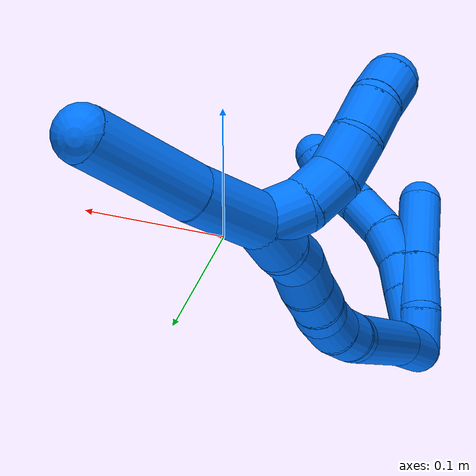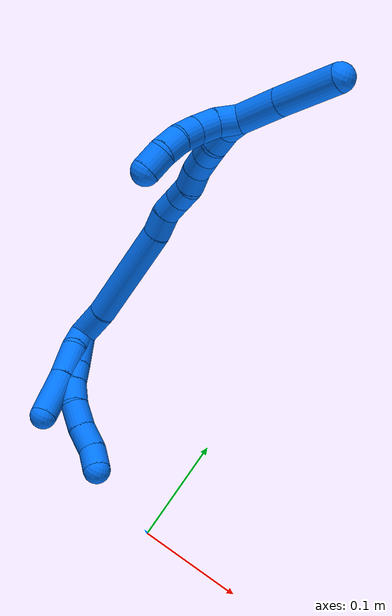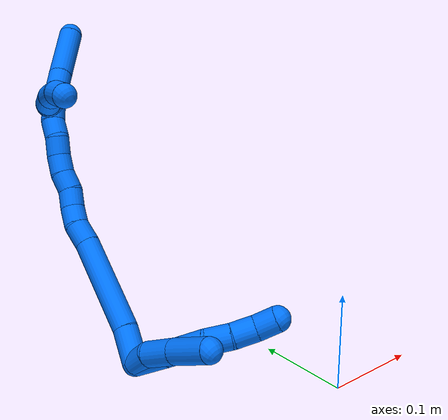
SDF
<sdf version="1.7">
 <world name="default">
  <model name="14">
   <static>0</static>
   <link name="14">
    <collision name="collision-cylinder-e_1_2_8">
     <pose>0.011186 -0.011287 -0.010384 2.31451 0.63016 1.27764</pose>
     <geometry><cylinder><radius>0.0125</radius><length>0.037966</length></cylinder></geometry>
     <surface>
      <friction><ode><mu>1.16</mu><mu2>1.16</mu2><slip1>0</slip1><slip2>0</slip2></ode></friction>
      <contact><ode><kp>1e+06</kp><kd>1</kd><max_vel>0</max_vel><min_depth>0.001</min_depth></ode></contact>
     </surface>
    </collision>
    <visual name="visual-cylinder-e_1_2_8">
     <pose>0.011186 -0.011287 -0.010384 2.31451 0.63016 1.27764</pose>
     <geometry><cylinder><radius>0.0125</radius><length>0.037966</length></cylinder></geometry>
     <material><ambient>0 0.462745 1 1</ambient></material>
    </visual>
    <collision name="collision-cylinder-e_2_8_9">
     <pose>0.028142 -0.028776 -0.026102 2.28126 0.614242 1.20964</pose>
     <geometry><cylinder><radius>0.0125</radius><length>0.02002</length></cylinder></geometry>
     <surface>
      <friction><ode><mu>1.16</mu><mu2>1.16</mu2><slip1>0</slip1><slip2>0</slip2></ode></friction>
      <contact><ode><kp>1e+06</kp><kd>1</kd><max_vel>0</max_vel><min_depth>0.001</min_depth></ode></contact>
     </surface>
    </collision>
    <visual name="visual-cylinder-e_2_8_9">
     <pose>0.028142 -0.028776 -0.026102 2.28126 0.614242 1.20964</pose>
     <geometry><cylinder><radius>0.0125</radius><length>0.02002</length></cylinder></geometry>
     <material><ambient>0 0.462745 1 1</ambient></material>
    </visual>
    <collision name="collision-cylinder-e_3_9_10">
     <pose>0.042318 -0.039885 -0.037194 2.43566 0.838137 1.75961</pose>
     <geometry><cylinder><radius>0.0125</radius><length>0.022619</length></cylinder></geometry>
     <surface>
      <friction><ode><mu>1.16</mu><mu2>1.16</mu2><slip1>0</slip1><slip2>0</slip2></ode></friction>
      <contact><ode><kp>1e+06</kp><kd>1</kd><max_vel>0</max_vel><min_depth>0.001</min_depth></ode></contact>
     </surface>
    </collision>
    <visual name="visual-cylinder-e_3_9_10">
     <pose>0.042318 -0.039885 -0.037194 2.43566 0.838137 1.75961</pose>
     <geometry><cylinder><radius>0.0125</radius><length>0.022619</length></cylinder></geometry>
     <material><ambient>0 0.462745 1 1</ambient></material>
    </visual>
    <collision name="collision-cylinder-e_4_10_11">
     <pose>0.06079 -0.047132 -0.049366 2.79191 0.974617 2.49809</pose>
     <geometry><cylinder><radius>0.0125</radius><length>0.024323</length></cylinder></geometry>
     <surface>
      <friction><ode><mu>1.16</mu><mu2>1.16</mu2><slip1>0</slip1><slip2>0</slip2></ode></friction>
      <contact><ode><kp>1e+06</kp><kd>1</kd><max_vel>0</max_vel><min_depth>0.001</min_depth></ode></contact>
     </surface>
    </collision>
    <visual name="visual-cylinder-e_4_10_11">
     <pose>0.06079 -0.047132 -0.049366 2.79191 0.974617 2.49809</pose>
     <geometry><cylinder><radius>0.0125</radius><length>0.024323</length></cylinder></geometry>
     <material><ambient>0 0.462745 1 1</ambient></material>
    </visual>
    <collision name="collision-cylinder-e_5_11_12">
     <pose>0.0815 -0.051052 -0.060444 2.81461 1.13765 2.63654</pose>
     <geometry><cylinder><radius>0.0125</radius><length>0.02346</length></cylinder></geometry>
     <surface>
      <friction><ode><mu>1.16</mu><mu2>1.16</mu2><slip1>0</slip1><slip2>0</slip2></ode></friction>
      <contact><ode><kp>1e+06</kp><kd>1</kd><max_vel>0</max_vel><min_depth>0.001</min_depth></ode></contact>
     </surface>
    </collision>
    <visual name="visual-cylinder-e_5_11_12">
     <pose>0.0815 -0.051052 -0.060444 2.81461 1.13765 2.63654</pose>
     <geometry><cylinder><radius>0.0125</radius><length>0.02346</length></cylinder></geometry>
     <material><ambient>0 0.462745 1 1</ambient></material>
    </visual>
    <collision name="collision-cylinder-e_6_12_6">
     <pose>0.100954 -0.057113 -0.069481 2.34441 0.952796 1.77265</pose>
     <geometry><cylinder><radius>0.0125</radius><length>0.021611</length></cylinder></geometry>
     <surface>
      <friction><ode><mu>1.16</mu><mu2>1.16</mu2><slip1>0</slip1><slip2>0</slip2></ode></friction>
      <contact><ode><kp>1e+06</kp><kd>1</kd><max_vel>0</max_vel><min_depth>0.001</min_depth></ode></contact>
     </surface>
    </collision>
    <visual name="visual-cylinder-e_6_12_6">
     <pose>0.100954 -0.057113 -0.069481 2.34441 0.952796 1.77265</pose>
     <geometry><cylinder><radius>0.0125</radius><length>0.021611</length></cylinder></geometry>
     <material><ambient>0 0.462745 1 1</ambient></material>
    </visual>
    <collision name="collision-cylinder-e_1_2_13">
     <pose>0.00502 -0.009686 -0.004267 1.98574 0.442864 0.664733</pose>
     <geometry><cylinder><radius>0.0125</radius><length>0.023428</length></cylinder></geometry>
     <surface>
      <friction><ode><mu>1.16</mu><mu2>1.16</mu2><slip1>0</slip1><slip2>0</slip2></ode></friction>
      <contact><ode><kp>1e+06</kp><kd>1</kd><max_vel>0</max_vel><min_depth>0.001</min_depth></ode></contact>
     </surface>
    </collision>
    <visual name="visual-cylinder-e_1_2_13">
     <pose>0.00502 -0.009686 -0.004267 1.98574 0.442864 0.664733</pose>
     <geometry><cylinder><radius>0.0125</radius><length>0.023428</length></cylinder></geometry>
     <material><ambient>0 0.462745 1 1</ambient></material>
    </visual>
    <collision name="collision-cylinder-e_2_13_14">
     <pose>0.017079 -0.02975 -0.019144 2.36728 0.442842 1.00891</pose>
     <geometry><cylinder><radius>0.0125</radius><length>0.032854</length></cylinder></geometry>
     <surface>
      <friction><ode><mu>1.16</mu><mu2>1.16</mu2><slip1>0</slip1><slip2>0</slip2></ode></friction>
      <contact><ode><kp>1e+06</kp><kd>1</kd><max_vel>0</max_vel><min_depth>0.001</min_depth></ode></contact>
     </surface>
    </collision>
    <visual name="visual-cylinder-e_2_13_14">
     <pose>0.017079 -0.02975 -0.019144 2.36728 0.442842 1.00891</pose>
     <geometry><cylinder><radius>0.0125</radius><length>0.032854</length></cylinder></geometry>
     <material><ambient>0 0.462745 1 1</ambient></material>
    </visual>
    <collision name="collision-cylinder-e_3_14_5">
     <pose>0.031747 -0.054336 -0.044511 2.37512 0.356509 0.840507</pose>
     <geometry><cylinder><radius>0.0125</radius><length>0.043718</length></cylinder></geometry>
     <surface>
      <friction><ode><mu>1.16</mu><mu2>1.16</mu2><slip1>0</slip1><slip2>0</slip2></ode></friction>
      <contact><ode><kp>1e+06</kp><kd>1</kd><max_vel>0</max_vel><min_depth>0.001</min_depth></ode></contact>
     </surface>
    </collision>
    <visual name="visual-cylinder-e_3_14_5">
     <pose>0.031747 -0.054336 -0.044511 2.37512 0.356509 0.840507</pose>
     <geometry><cylinder><radius>0.0125</radius><length>0.043718</length></cylinder></geometry>
     <material><ambient>0 0.462745 1 1</ambient></material>
    </visual>
    <collision name="collision-cylinder-e_1_2_15">
     <pose>0.006734 -0.002694 0.016218 0.164606 0.388776 0.032477</pose>
     <geometry><cylinder><radius>0.0125</radius><length>0.035531</length></cylinder></geometry>
     <surface>
      <friction><ode><mu>1.16</mu><mu2>1.16</mu2><slip1>0</slip1><slip2>0</slip2></ode></friction>
      <contact><ode><kp>1e+06</kp><kd>1</kd><max_vel>0</max_vel><min_depth>0.001</min_depth></ode></contact>
     </surface>
    </collision>
    <visual name="visual-cylinder-e_1_2_15">
     <pose>0.006734 -0.002694 0.016218 0.164606 0.388776 0.032477</pose>
     <geometry><cylinder><radius>0.0125</radius><length>0.035531</length></cylinder></geometry>
     <material><ambient>0 0.462745 1 1</ambient></material>
    </visual>
    <collision name="collision-cylinder-e_2_15_16">
     <pose>0.026394 -0.011754 0.080937 0.130517 0.258336 0.016977</pose>
     <geometry><cylinder><radius>0.0125</radius><length>0.101193</length></cylinder></geometry>
     <surface>
      <friction><ode><mu>1.16</mu><mu2>1.16</mu2><slip1>0</slip1><slip2>0</slip2></ode></friction>
      <contact><ode><kp>1e+06</kp><kd>1</kd><max_vel>0</max_vel><min_depth>0.001</min_depth></ode></contact>
     </surface>
    </collision>
    <visual name="visual-cylinder-e_2_15_16">
     <pose>0.026394 -0.011754 0.080937 0.130517 0.258336 0.016977</pose>
     <geometry><cylinder><radius>0.0125</radius><length>0.101193</length></cylinder></geometry>
     <material><ambient>0 0.462745 1 1</ambient></material>
    </visual>
    <collision name="collision-cylinder-e_3_16_17">
     <pose>0.040812 -0.020631 0.14069 0.219505 0.12868 0.014199</pose>
     <geometry><cylinder><radius>0.0125</radius><length>0.02325</length></cylinder></geometry>
     <surface>
      <friction><ode><mu>1.16</mu><mu2>1.16</mu2><slip1>0</slip1><slip2>0</slip2></ode></friction>
      <contact><ode><kp>1e+06</kp><kd>1</kd><max_vel>0</max_vel><min_depth>0.001</min_depth></ode></contact>
     </surface>
    </collision>
    <visual name="visual-cylinder-e_3_16_17">
     <pose>0.040812 -0.020631 0.14069 0.219505 0.12868 0.014199</pose>
     <geometry><cylinder><radius>0.0125</radius><length>0.02325</length></cylinder></geometry>
     <material><ambient>0 0.462745 1 1</ambient></material>
    </visual>
    <collision name="collision-cylinder-e_4_17_18">
     <pose>0.046384 -0.025025 0.160878 0.207721 0.420177 0.044446</pose>
     <geometry><cylinder><radius>0.0125</radius><length>0.020002</length></cylinder></geometry>
     <surface>
      <friction><ode><mu>1.16</mu><mu2>1.16</mu2><slip1>0</slip1><slip2>0</slip2></ode></friction>
      <contact><ode><kp>1e+06</kp><kd>1</kd><max_vel>0</max_vel><min_depth>0.001</min_depth></ode></contact>
     </surface>
    </collision>
    <visual name="visual-cylinder-e_4_17_18">
     <pose>0.046384 -0.025025 0.160878 0.207721 0.420177 0.044446</pose>
     <geometry><cylinder><radius>0.0125</radius><length>0.020002</length></cylinder></geometry>
     <material><ambient>0 0.462745 1 1</ambient></material>
    </visual>
    <collision name="collision-cylinder-e_5_18_19">
     <pose>0.055143 -0.030598 0.177856 0.430098 0.48646 0.108296</pose>
     <geometry><cylinder><radius>0.0125</radius><length>0.020022</length></cylinder></geometry>
     <surface>
      <friction><ode><mu>1.16</mu><mu2>1.16</mu2><slip1>0</slip1><slip2>0</slip2></ode></friction>
      <contact><ode><kp>1e+06</kp><kd>1</kd><max_vel>0</max_vel><min_depth>0.001</min_depth></ode></contact>
     </surface>
    </collision>
    <visual name="visual-cylinder-e_5_18_19">
     <pose>0.055143 -0.030598 0.177856 0.430098 0.48646 0.108296</pose>
     <geometry><cylinder><radius>0.0125</radius><length>0.020022</length></cylinder></geometry>
     <material><ambient>0 0.462745 1 1</ambient></material>
    </visual>
    <collision name="collision-cylinder-e_6_19_20">
     <pose>0.061714 -0.038054 0.194969 0.393621 0.190181 0.038031</pose>
     <geometry><cylinder><radius>0.0125</radius><length>0.020001</length></cylinder></geometry>
     <surface>
      <friction><ode><mu>1.16</mu><mu2>1.16</mu2><slip1>0</slip1><slip2>0</slip2></ode></friction>
      <contact><ode><kp>1e+06</kp><kd>1</kd><max_vel>0</max_vel><min_depth>0.001</min_depth></ode></contact>
     </surface>
    </collision>
    <visual name="visual-cylinder-e_6_19_20">
     <pose>0.061714 -0.038054 0.194969 0.393621 0.190181 0.038031</pose>
     <geometry><cylinder><radius>0.0125</radius><length>0.020001</length></cylinder></geometry>
     <material><ambient>0 0.462745 1 1</ambient></material>
    </visual>
    <collision name="collision-cylinder-e_7_20_21">
     <pose>0.067486 -0.045964 0.21227 0.466349 0.398587 0.095862</pose>
     <geometry><cylinder><radius>0.0125</radius><length>0.02</length></cylinder></geometry>
     <surface>
      <friction><ode><mu>1.16</mu><mu2>1.16</mu2><slip1>0</slip1><slip2>0</slip2></ode></friction>
      <contact><ode><kp>1e+06</kp><kd>1</kd><max_vel>0</max_vel><min_depth>0.001</min_depth></ode></contact>
     </surface>
    </collision>
    <visual name="visual-cylinder-e_7_20_21">
     <pose>0.067486 -0.045964 0.21227 0.466349 0.398587 0.095862</pose>
     <geometry><cylinder><radius>0.0125</radius><length>0.02</length></cylinder></geometry>
     <material><ambient>0 0.462745 1 1</ambient></material>
    </visual>
    <collision name="collision-cylinder-e_8_21_22">
     <pose>0.075852 -0.055549 0.227594 0.654427 0.465053 0.160409</pose>
     <geometry><cylinder><radius>0.0125</radius><length>0.02</length></cylinder></geometry>
     <surface>
      <friction><ode><mu>1.16</mu><mu2>1.16</mu2><slip1>0</slip1><slip2>0</slip2></ode></friction>
      <contact><ode><kp>1e+06</kp><kd>1</kd><max_vel>0</max_vel><min_depth>0.001</min_depth></ode></contact>
     </surface>
    </collision>
    <visual name="visual-cylinder-e_8_21_22">
     <pose>0.075852 -0.055549 0.227594 0.654427 0.465053 0.160409</pose>
     <geometry><cylinder><radius>0.0125</radius><length>0.02</length></cylinder></geometry>
     <material><ambient>0 0.462745 1 1</ambient></material>
    </visual>
    <collision name="collision-cylinder-e_9_22_23">
     <pose>0.084163 -0.063792 0.243489 0.308154 0.39266 0.06176</pose>
     <geometry><cylinder><radius>0.0125</radius><length>0.02</length></cylinder></geometry>
     <surface>
      <friction><ode><mu>1.16</mu><mu2>1.16</mu2><slip1>0</slip1><slip2>0</slip2></ode></friction>
      <contact><ode><kp>1e+06</kp><kd>1</kd><max_vel>0</max_vel><min_depth>0.001</min_depth></ode></contact>
     </surface>
    </collision>
    <visual name="visual-cylinder-e_9_22_23">
     <pose>0.084163 -0.063792 0.243489 0.308154 0.39266 0.06176</pose>
     <geometry><cylinder><radius>0.0125</radius><length>0.02</length></cylinder></geometry>
     <material><ambient>0 0.462745 1 1</ambient></material>
    </visual>
    <collision name="collision-cylinder-e_10_23_1">
     <pose>0.09392 -0.070692 0.259223 0.534033 0.634868 0.179264</pose>
     <geometry><cylinder><radius>0.0125</radius><length>0.02</length></cylinder></geometry>
     <surface>
      <friction><ode><mu>1.16</mu><mu2>1.16</mu2><slip1>0</slip1><slip2>0</slip2></ode></friction>
      <contact><ode><kp>1e+06</kp><kd>1</kd><max_vel>0</max_vel><min_depth>0.001</min_depth></ode></contact>
     </surface>
    </collision>
    <visual name="visual-cylinder-e_10_23_1">
     <pose>0.09392 -0.070692 0.259223 0.534033 0.634868 0.179264</pose>
     <geometry><cylinder><radius>0.0125</radius><length>0.02</length></cylinder></geometry>
     <material><ambient>0 0.462745 1 1</ambient></material>
    </visual>
    <collision name="collision-cylinder-e_1_1_24">
     <pose>0.094033 -0.081314 0.261297 2.21072 -0.620943 -1.13697</pose>
     <geometry><cylinder><radius>0.0125</radius><length>0.02</length></cylinder></geometry>
     <surface>
      <friction><ode><mu>1.16</mu><mu2>1.16</mu2><slip1>0</slip1><slip2>0</slip2></ode></friction>
      <contact><ode><kp>1e+06</kp><kd>1</kd><max_vel>0</max_vel><min_depth>0.001</min_depth></ode></contact>
     </surface>
    </collision>
    <visual name="visual-cylinder-e_1_1_24">
     <pose>0.094033 -0.081314 0.261297 2.21072 -0.620943 -1.13697</pose>
     <geometry><cylinder><radius>0.0125</radius><length>0.02</length></cylinder></geometry>
     <material><ambient>0 0.462745 1 1</ambient></material>
    </visual>
    <collision name="collision-cylinder-e_2_24_25">
     <pose>0.085349 -0.095516 0.250709 2.21208 -0.290682 -0.568084</pose>
     <geometry><cylinder><radius>0.0125</radius><length>0.02</length></cylinder></geometry>
     <surface>
      <friction><ode><mu>1.16</mu><mu2>1.16</mu2><slip1>0</slip1><slip2>0</slip2></ode></friction>
      <contact><ode><kp>1e+06</kp><kd>1</kd><max_vel>0</max_vel><min_depth>0.001</min_depth></ode></contact>
     </surface>
    </collision>
    <visual name="visual-cylinder-e_2_24_25">
     <pose>0.085349 -0.095516 0.250709 2.21208 -0.290682 -0.568084</pose>
     <geometry><cylinder><radius>0.0125</radius><length>0.02</length></cylinder></geometry>
     <material><ambient>0 0.462745 1 1</ambient></material>
    </visual>
    <collision name="collision-cylinder-e_3_25_26">
     <pose>0.082356 -0.112107 0.240448 2.04096 -0.012676 -0.02066</pose>
     <geometry><cylinder><radius>0.0125</radius><length>0.02</length></cylinder></geometry>
     <surface>
      <friction><ode><mu>1.16</mu><mu2>1.16</mu2><slip1>0</slip1><slip2>0</slip2></ode></friction>
      <contact><ode><kp>1e+06</kp><kd>1</kd><max_vel>0</max_vel><min_depth>0.001</min_depth></ode></contact>
     </surface>
    </collision>
    <visual name="visual-cylinder-e_3_25_26">
     <pose>0.082356 -0.112107 0.240448 2.04096 -0.012676 -0.02066</pose>
     <geometry><cylinder><radius>0.0125</radius><length>0.02</length></cylinder></geometry>
     <material><ambient>0 0.462745 1 1</ambient></material>
    </visual>
    <collision name="collision-cylinder-e_4_26_27">
     <pose>0.082543 -0.128717 0.22954 2.26282 0.031354 0.066686</pose>
     <geometry><cylinder><radius>0.0125</radius><length>0.02</length></cylinder></geometry>
     <surface>
      <friction><ode><mu>1.16</mu><mu2>1.16</mu2><slip1>0</slip1><slip2>0</slip2></ode></friction>
      <contact><ode><kp>1e+06</kp><kd>1</kd><max_vel>0</max_vel><min_depth>0.001</min_depth></ode></contact>
     </surface>
    </collision>
    <visual name="visual-cylinder-e_4_26_27">
     <pose>0.082543 -0.128717 0.22954 2.26282 0.031354 0.066686</pose>
     <geometry><cylinder><radius>0.0125</radius><length>0.02</length></cylinder></geometry>
     <material><ambient>0 0.462745 1 1</ambient></material>
    </visual>
    <collision name="collision-cylinder-e_5_27_4">
     <pose>0.082452 -0.141547 0.21459 2.60199 -0.040403 -0.14586</pose>
     <geometry><cylinder><radius>0.0125</radius><length>0.02</length></cylinder></geometry>
     <surface>
      <friction><ode><mu>1.16</mu><mu2>1.16</mu2><slip1>0</slip1><slip2>0</slip2></ode></friction>
      <contact><ode><kp>1e+06</kp><kd>1</kd><max_vel>0</max_vel><min_depth>0.001</min_depth></ode></contact>
     </surface>
    </collision>
    <visual name="visual-cylinder-e_5_27_4">
     <pose>0.082452 -0.141547 0.21459 2.60199 -0.040403 -0.14586</pose>
     <geometry><cylinder><radius>0.0125</radius><length>0.02</length></cylinder></geometry>
     <material><ambient>0 0.462745 1 1</ambient></material>
    </visual>
    <collision name="collision-cylinder-e_1_1_28">
     <pose>0.114237 -0.076153 0.280787 0.092858 0.774727 0.037907</pose>
     <geometry><cylinder><radius>0.0125</radius><length>0.041133</length></cylinder></geometry>
     <surface>
      <friction><ode><mu>1.16</mu><mu2>1.16</mu2><slip1>0</slip1><slip2>0</slip2></ode></friction>
      <contact><ode><kp>1e+06</kp><kd>1</kd><max_vel>0</max_vel><min_depth>0.001</min_depth></ode></contact>
     </surface>
    </collision>
    <visual name="visual-cylinder-e_1_1_28">
     <pose>0.114237 -0.076153 0.280787 0.092858 0.774727 0.037907</pose>
     <geometry><cylinder><radius>0.0125</radius><length>0.041133</length></cylinder></geometry>
     <material><ambient>0 0.462745 1 1</ambient></material>
    </visual>
    <collision name="collision-cylinder-e_2_28_3">
     <pose>0.149974 -0.081284 0.315329 0.18704 0.811543 0.080546</pose>
     <geometry><cylinder><radius>0.0125</radius><length>0.058867</length></cylinder></geometry>
     <surface>
      <friction><ode><mu>1.16</mu><mu2>1.16</mu2><slip1>0</slip1><slip2>0</slip2></ode></friction>
      <contact><ode><kp>1e+06</kp><kd>1</kd><max_vel>0</max_vel><min_depth>0.001</min_depth></ode></contact>
     </surface>
    </collision>
    <visual name="visual-cylinder-e_2_28_3">
     <pose>0.149974 -0.081284 0.315329 0.18704 0.811543 0.080546</pose>
     <geometry><cylinder><radius>0.0125</radius><length>0.058867</length></cylinder></geometry>
     <material><ambient>0 0.462745 1 1</ambient></material>
    </visual>
    <collision name="collision-sphere-3">
     <pose>0.171323 -0.085051 0.335237 0 -0 0</pose>
     <geometry><sphere><radius>0.0125</radius></sphere></geometry>
     <surface>
      <friction><ode><mu>1.16</mu><mu2>1.16</mu2><slip1>0</slip1><slip2>0</slip2></ode></friction>
      <contact><ode><kp>1e+06</kp><kd>1</kd><max_vel>0</max_vel><min_depth>0.001</min_depth></ode></contact>
     </surface>
    </collision>
    <visual name="visual-sphere-3">
     <pose>0.171323 -0.085051 0.335237 0 -0 0</pose>
     <geometry><sphere><radius>0.0125</radius></sphere></geometry>
     <material><ambient>0 0.462745 1 1</ambient></material>
    </visual>
    <collision name="collision-sphere-28">
     <pose>0.128624 -0.077516 0.295421 0 -0 0</pose>
     <geometry><sphere><radius>0.0125</radius></sphere></geometry>
     <surface>
      <friction><ode><mu>1.16</mu><mu2>1.16</mu2><slip1>0</slip1><slip2>0</slip2></ode></friction>
      <contact><ode><kp>1e+06</kp><kd>1</kd><max_vel>0</max_vel><min_depth>0.001</min_depth></ode></contact>
     </surface>
    </collision>
    <visual name="visual-sphere-28">
     <pose>0.128624 -0.077516 0.295421 0 -0 0</pose>
     <geometry><sphere><radius>0.0125</radius></sphere></geometry>
     <material><ambient>0 0.462745 1 1</ambient></material>
    </visual>
    <collision name="collision-sphere-4">
     <pose>0.082048 -0.14668 0.206018 0 -0 0</pose>
     <geometry><sphere><radius>0.0125</radius></sphere></geometry>
     <surface>
      <friction><ode><mu>1.16</mu><mu2>1.16</mu2><slip1>0</slip1><slip2>0</slip2></ode></friction>
      <contact><ode><kp>1e+06</kp><kd>1</kd><max_vel>0</max_vel><min_depth>0.001</min_depth></ode></contact>
     </surface>
    </collision>
    <visual name="visual-sphere-4">
     <pose>0.082048 -0.14668 0.206018 0 -0 0</pose>
     <geometry><sphere><radius>0.0125</radius></sphere></geometry>
     <material><ambient>0 0.462745 1 1</ambient></material>
    </visual>
    <collision name="collision-sphere-27">
     <pose>0.082856 -0.136413 0.223162 0 -0 0</pose>
     <geometry><sphere><radius>0.0125</radius></sphere></geometry>
     <surface>
      <friction><ode><mu>1.16</mu><mu2>1.16</mu2><slip1>0</slip1><slip2>0</slip2></ode></friction>
      <contact><ode><kp>1e+06</kp><kd>1</kd><max_vel>0</max_vel><min_depth>0.001</min_depth></ode></contact>
     </surface>
    </collision>
    <visual name="visual-sphere-27">
     <pose>0.082856 -0.136413 0.223162 0 -0 0</pose>
     <geometry><sphere><radius>0.0125</radius></sphere></geometry>
     <material><ambient>0 0.462745 1 1</ambient></material>
    </visual>
    <collision name="collision-sphere-26">
     <pose>0.082229 -0.121021 0.235918 0 -0 0</pose>
     <geometry><sphere><radius>0.0125</radius></sphere></geometry>
     <surface>
      <friction><ode><mu>1.16</mu><mu2>1.16</mu2><slip1>0</slip1><slip2>0</slip2></ode></friction>
      <contact><ode><kp>1e+06</kp><kd>1</kd><max_vel>0</max_vel><min_depth>0.001</min_depth></ode></contact>
     </surface>
    </collision>
    <visual name="visual-sphere-26">
     <pose>0.082229 -0.121021 0.235918 0 -0 0</pose>
     <geometry><sphere><radius>0.0125</radius></sphere></geometry>
     <material><ambient>0 0.462745 1 1</ambient></material>
    </visual>
    <collision name="collision-sphere-25">
     <pose>0.082483 -0.103193 0.244978 0 -0 0</pose>
     <geometry><sphere><radius>0.0125</radius></sphere></geometry>
     <surface>
      <friction><ode><mu>1.16</mu><mu2>1.16</mu2><slip1>0</slip1><slip2>0</slip2></ode></friction>
      <contact><ode><kp>1e+06</kp><kd>1</kd><max_vel>0</max_vel><min_depth>0.001</min_depth></ode></contact>
     </surface>
    </collision>
    <visual name="visual-sphere-25">
     <pose>0.082483 -0.103193 0.244978 0 -0 0</pose>
     <geometry><sphere><radius>0.0125</radius></sphere></geometry>
     <material><ambient>0 0.462745 1 1</ambient></material>
    </visual>
    <collision name="collision-sphere-24">
     <pose>0.088215 -0.087839 0.25644 0 -0 0</pose>
     <geometry><sphere><radius>0.0125</radius></sphere></geometry>
     <surface>
      <friction><ode><mu>1.16</mu><mu2>1.16</mu2><slip1>0</slip1><slip2>0</slip2></ode></friction>
      <contact><ode><kp>1e+06</kp><kd>1</kd><max_vel>0</max_vel><min_depth>0.001</min_depth></ode></contact>
     </surface>
    </collision>
    <visual name="visual-sphere-24">
     <pose>0.088215 -0.087839 0.25644 0 -0 0</pose>
     <geometry><sphere><radius>0.0125</radius></sphere></geometry>
     <material><ambient>0 0.462745 1 1</ambient></material>
    </visual>
    <collision name="collision-sphere-1">
     <pose>0.099851 -0.07479 0.266154 0 -0 0</pose>
     <geometry><sphere><radius>0.0125</radius></sphere></geometry>
     <surface>
      <friction><ode><mu>1.16</mu><mu2>1.16</mu2><slip1>0</slip1><slip2>0</slip2></ode></friction>
      <contact><ode><kp>1e+06</kp><kd>1</kd><max_vel>0</max_vel><min_depth>0.001</min_depth></ode></contact>
     </surface>
    </collision>
    <visual name="visual-sphere-1">
     <pose>0.099851 -0.07479 0.266154 0 -0 0</pose>
     <geometry><sphere><radius>0.0125</radius></sphere></geometry>
     <material><ambient>0 0.462745 1 1</ambient></material>
    </visual>
    <collision name="collision-sphere-23">
     <pose>0.087989 -0.066594 0.252293 0 -0 0</pose>
     <geometry><sphere><radius>0.0125</radius></sphere></geometry>
     <surface>
      <friction><ode><mu>1.16</mu><mu2>1.16</mu2><slip1>0</slip1><slip2>0</slip2></ode></friction>
      <contact><ode><kp>1e+06</kp><kd>1</kd><max_vel>0</max_vel><min_depth>0.001</min_depth></ode></contact>
     </surface>
    </collision>
    <visual name="visual-sphere-23">
     <pose>0.087989 -0.066594 0.252293 0 -0 0</pose>
     <geometry><sphere><radius>0.0125</radius></sphere></geometry>
     <material><ambient>0 0.462745 1 1</ambient></material>
    </visual>
    <collision name="collision-sphere-22">
     <pose>0.080336 -0.060989 0.234685 0 -0 0</pose>
     <geometry><sphere><radius>0.0125</radius></sphere></geometry>
     <surface>
      <friction><ode><mu>1.16</mu><mu2>1.16</mu2><slip1>0</slip1><slip2>0</slip2></ode></friction>
      <contact><ode><kp>1e+06</kp><kd>1</kd><max_vel>0</max_vel><min_depth>0.001</min_depth></ode></contact>
     </surface>
    </collision>
    <visual name="visual-sphere-22">
     <pose>0.080336 -0.060989 0.234685 0 -0 0</pose>
     <geometry><sphere><radius>0.0125</radius></sphere></geometry>
     <material><ambient>0 0.462745 1 1</ambient></material>
    </visual>
    <collision name="collision-sphere-21">
     <pose>0.071367 -0.050108 0.220502 0 -0 0</pose>
     <geometry><sphere><radius>0.0125</radius></sphere></geometry>
     <surface>
      <friction><ode><mu>1.16</mu><mu2>1.16</mu2><slip1>0</slip1><slip2>0</slip2></ode></friction>
      <contact><ode><kp>1e+06</kp><kd>1</kd><max_vel>0</max_vel><min_depth>0.001</min_depth></ode></contact>
     </surface>
    </collision>
    <visual name="visual-sphere-21">
     <pose>0.071367 -0.050108 0.220502 0 -0 0</pose>
     <geometry><sphere><radius>0.0125</radius></sphere></geometry>
     <material><ambient>0 0.462745 1 1</ambient></material>
    </visual>
    <collision name="collision-sphere-12">
     <pose>0.092147 -0.052634 -0.065106 0 -0 0</pose>
     <geometry><sphere><radius>0.0125</radius></sphere></geometry>
     <surface>
      <friction><ode><mu>1.16</mu><mu2>1.16</mu2><slip1>0</slip1><slip2>0</slip2></ode></friction>
      <contact><ode><kp>1e+06</kp><kd>1</kd><max_vel>0</max_vel><min_depth>0.001</min_depth></ode></contact>
     </surface>
    </collision>
    <visual name="visual-sphere-12">
     <pose>0.092147 -0.052634 -0.065106 0 -0 0</pose>
     <geometry><sphere><radius>0.0125</radius></sphere></geometry>
     <material><ambient>0 0.462745 1 1</ambient></material>
    </visual>
    <collision name="collision-sphere-11">
     <pose>0.070853 -0.049471 -0.055781 0 -0 0</pose>
     <geometry><sphere><radius>0.0125</radius></sphere></geometry>
     <surface>
      <friction><ode><mu>1.16</mu><mu2>1.16</mu2><slip1>0</slip1><slip2>0</slip2></ode></friction>
      <contact><ode><kp>1e+06</kp><kd>1</kd><max_vel>0</max_vel><min_depth>0.001</min_depth></ode></contact>
     </surface>
    </collision>
    <visual name="visual-sphere-11">
     <pose>0.070853 -0.049471 -0.055781 0 -0 0</pose>
     <geometry><sphere><radius>0.0125</radius></sphere></geometry>
     <material><ambient>0 0.462745 1 1</ambient></material>
    </visual>
    <collision name="collision-sphere-10">
     <pose>0.050726 -0.044792 -0.04295 0 -0 0</pose>
     <geometry><sphere><radius>0.0125</radius></sphere></geometry>
     <surface>
      <friction><ode><mu>1.16</mu><mu2>1.16</mu2><slip1>0</slip1><slip2>0</slip2></ode></friction>
      <contact><ode><kp>1e+06</kp><kd>1</kd><max_vel>0</max_vel><min_depth>0.001</min_depth></ode></contact>
     </surface>
    </collision>
    <visual name="visual-sphere-10">
     <pose>0.050726 -0.044792 -0.04295 0 -0 0</pose>
     <geometry><sphere><radius>0.0125</radius></sphere></geometry>
     <material><ambient>0 0.462745 1 1</ambient></material>
    </visual>
    <collision name="collision-sphere-9">
     <pose>0.033911 -0.034977 -0.031437 0 -0 0</pose>
     <geometry><sphere><radius>0.0125</radius></sphere></geometry>
     <surface>
      <friction><ode><mu>1.16</mu><mu2>1.16</mu2><slip1>0</slip1><slip2>0</slip2></ode></friction>
      <contact><ode><kp>1e+06</kp><kd>1</kd><max_vel>0</max_vel><min_depth>0.001</min_depth></ode></contact>
     </surface>
    </collision>
    <visual name="visual-sphere-9">
     <pose>0.033911 -0.034977 -0.031437 0 -0 0</pose>
     <geometry><sphere><radius>0.0125</radius></sphere></geometry>
     <material><ambient>0 0.462745 1 1</ambient></material>
    </visual>
    <collision name="collision-sphere-2">
     <geometry><sphere><radius>0.0125</radius></sphere></geometry>
     <surface>
      <friction><ode><mu>1.16</mu><mu2>1.16</mu2><slip1>0</slip1><slip2>0</slip2></ode></friction>
      <contact><ode><kp>1e+06</kp><kd>1</kd><max_vel>0</max_vel><min_depth>0.001</min_depth></ode></contact>
     </surface>
    </collision>
    <visual name="visual-sphere-2">
     <geometry><sphere><radius>0.0125</radius></sphere></geometry>
     <material><ambient>0 0.462745 1 1</ambient></material>
    </visual>
    <collision name="collision-sphere-19">
     <pose>0.059823 -0.034288 0.1859 0 -0 0</pose>
     <geometry><sphere><radius>0.0125</radius></sphere></geometry>
     <surface>
      <friction><ode><mu>1.16</mu><mu2>1.16</mu2><slip1>0</slip1><slip2>0</slip2></ode></friction>
      <contact><ode><kp>1e+06</kp><kd>1</kd><max_vel>0</max_vel><min_depth>0.001</min_depth></ode></contact>
     </surface>
    </collision>
    <visual name="visual-sphere-19">
     <pose>0.059823 -0.034288 0.1859 0 -0 0</pose>
     <geometry><sphere><radius>0.0125</radius></sphere></geometry>
     <material><ambient>0 0.462745 1 1</ambient></material>
    </visual>
    <collision name="collision-sphere-8">
     <pose>0.022372 -0.022575 -0.020767 0 -0 0</pose>
     <geometry><sphere><radius>0.0125</radius></sphere></geometry>
     <surface>
      <friction><ode><mu>1.16</mu><mu2>1.16</mu2><slip1>0</slip1><slip2>0</slip2></ode></friction>
      <contact><ode><kp>1e+06</kp><kd>1</kd><max_vel>0</max_vel><min_depth>0.001</min_depth></ode></contact>
     </surface>
    </collision>
    <visual name="visual-sphere-8">
     <pose>0.022372 -0.022575 -0.020767 0 -0 0</pose>
     <geometry><sphere><radius>0.0125</radius></sphere></geometry>
     <material><ambient>0 0.462745 1 1</ambient></material>
    </visual>
    <collision name="collision-sphere-6">
     <pose>0.109761 -0.061592 -0.073855 0 -0 0</pose>
     <geometry><sphere><radius>0.0125</radius></sphere></geometry>
     <surface>
      <friction><ode><mu>1.16</mu><mu2>1.16</mu2><slip1>0</slip1><slip2>0</slip2></ode></friction>
      <contact><ode><kp>1e+06</kp><kd>1</kd><max_vel>0</max_vel><min_depth>0.001</min_depth></ode></contact>
     </surface>
    </collision>
    <visual name="visual-sphere-6">
     <pose>0.109761 -0.061592 -0.073855 0 -0 0</pose>
     <geometry><sphere><radius>0.0125</radius></sphere></geometry>
     <material><ambient>0 0.462745 1 1</ambient></material>
    </visual>
    <collision name="collision-sphere-13">
     <pose>0.01004 -0.019371 -0.008534 0 -0 0</pose>
     <geometry><sphere><radius>0.0125</radius></sphere></geometry>
     <surface>
      <friction><ode><mu>1.16</mu><mu2>1.16</mu2><slip1>0</slip1><slip2>0</slip2></ode></friction>
      <contact><ode><kp>1e+06</kp><kd>1</kd><max_vel>0</max_vel><min_depth>0.001</min_depth></ode></contact>
     </surface>
    </collision>
    <visual name="visual-sphere-13">
     <pose>0.01004 -0.019371 -0.008534 0 -0 0</pose>
     <geometry><sphere><radius>0.0125</radius></sphere></geometry>
     <material><ambient>0 0.462745 1 1</ambient></material>
    </visual>
    <collision name="collision-sphere-14">
     <pose>0.024118 -0.040128 -0.029755 0 -0 0</pose>
     <geometry><sphere><radius>0.0125</radius></sphere></geometry>
     <surface>
      <friction><ode><mu>1.16</mu><mu2>1.16</mu2><slip1>0</slip1><slip2>0</slip2></ode></friction>
      <contact><ode><kp>1e+06</kp><kd>1</kd><max_vel>0</max_vel><min_depth>0.001</min_depth></ode></contact>
     </surface>
    </collision>
    <visual name="visual-sphere-14">
     <pose>0.024118 -0.040128 -0.029755 0 -0 0</pose>
     <geometry><sphere><radius>0.0125</radius></sphere></geometry>
     <material><ambient>0 0.462745 1 1</ambient></material>
    </visual>
    <collision name="collision-sphere-5">
     <pose>0.039376 -0.068544 -0.059268 0 -0 0</pose>
     <geometry><sphere><radius>0.0125</radius></sphere></geometry>
     <surface>
      <friction><ode><mu>1.16</mu><mu2>1.16</mu2><slip1>0</slip1><slip2>0</slip2></ode></friction>
      <contact><ode><kp>1e+06</kp><kd>1</kd><max_vel>0</max_vel><min_depth>0.001</min_depth></ode></contact>
     </surface>
    </collision>
    <visual name="visual-sphere-5">
     <pose>0.039376 -0.068544 -0.059268 0 -0 0</pose>
     <geometry><sphere><radius>0.0125</radius></sphere></geometry>
     <material><ambient>0 0.462745 1 1</ambient></material>
    </visual>
    <collision name="collision-sphere-15">
     <pose>0.013468 -0.005388 0.032435 0 -0 0</pose>
     <geometry><sphere><radius>0.0125</radius></sphere></geometry>
     <surface>
      <friction><ode><mu>1.16</mu><mu2>1.16</mu2><slip1>0</slip1><slip2>0</slip2></ode></friction>
      <contact><ode><kp>1e+06</kp><kd>1</kd><max_vel>0</max_vel><min_depth>0.001</min_depth></ode></contact>
     </surface>
    </collision>
    <visual name="visual-sphere-15">
     <pose>0.013468 -0.005388 0.032435 0 -0 0</pose>
     <geometry><sphere><radius>0.0125</radius></sphere></geometry>
     <material><ambient>0 0.462745 1 1</ambient></material>
    </visual>
    <collision name="collision-sphere-16">
     <pose>0.03932 -0.018121 0.129438 0 -0 0</pose>
     <geometry><sphere><radius>0.0125</radius></sphere></geometry>
     <surface>
      <friction><ode><mu>1.16</mu><mu2>1.16</mu2><slip1>0</slip1><slip2>0</slip2></ode></friction>
      <contact><ode><kp>1e+06</kp><kd>1</kd><max_vel>0</max_vel><min_depth>0.001</min_depth></ode></contact>
     </surface>
    </collision>
    <visual name="visual-sphere-16">
     <pose>0.03932 -0.018121 0.129438 0 -0 0</pose>
     <geometry><sphere><radius>0.0125</radius></sphere></geometry>
     <material><ambient>0 0.462745 1 1</ambient></material>
    </visual>
    <collision name="collision-sphere-17">
     <pose>0.042304 -0.023141 0.151943 0 -0 0</pose>
     <geometry><sphere><radius>0.0125</radius></sphere></geometry>
     <surface>
      <friction><ode><mu>1.16</mu><mu2>1.16</mu2><slip1>0</slip1><slip2>0</slip2></ode></friction>
      <contact><ode><kp>1e+06</kp><kd>1</kd><max_vel>0</max_vel><min_depth>0.001</min_depth></ode></contact>
     </surface>
    </collision>
    <visual name="visual-sphere-17">
     <pose>0.042304 -0.023141 0.151943 0 -0 0</pose>
     <geometry><sphere><radius>0.0125</radius></sphere></geometry>
     <material><ambient>0 0.462745 1 1</ambient></material>
    </visual>
    <collision name="collision-sphere-18">
     <pose>0.050463 -0.026908 0.169812 0 -0 0</pose>
     <geometry><sphere><radius>0.0125</radius></sphere></geometry>
     <surface>
      <friction><ode><mu>1.16</mu><mu2>1.16</mu2><slip1>0</slip1><slip2>0</slip2></ode></friction>
      <contact><ode><kp>1e+06</kp><kd>1</kd><max_vel>0</max_vel><min_depth>0.001</min_depth></ode></contact>
     </surface>
    </collision>
    <visual name="visual-sphere-18">
     <pose>0.050463 -0.026908 0.169812 0 -0 0</pose>
     <geometry><sphere><radius>0.0125</radius></sphere></geometry>
     <material><ambient>0 0.462745 1 1</ambient></material>
    </visual>
    <collision name="collision-sphere-20">
     <pose>0.063604 -0.04182 0.204038 0 -0 0</pose>
     <geometry><sphere><radius>0.0125</radius></sphere></geometry>
     <surface>
      <friction><ode><mu>1.16</mu><mu2>1.16</mu2><slip1>0</slip1><slip2>0</slip2></ode></friction>
      <contact><ode><kp>1e+06</kp><kd>1</kd><max_vel>0</max_vel><min_depth>0.001</min_depth></ode></contact>
     </surface>
    </collision>
    <visual name="visual-sphere-20">
     <pose>0.063604 -0.04182 0.204038 0 -0 0</pose>
     <geometry><sphere><radius>0.0125</radius></sphere></geometry>
     <material><ambient>0 0.462745 1 1</ambient></material>
    </visual>
    <inertial>
     <pose>0.060267 -0.0487 0.116078 0 -0 0</pose>
     <mass>0.75</mass>
     <inertia>
      <ixx>0.000181</ixx>
      <ixy>0</ixy>
      <ixz>0</ixz>
      <iyy>0.000133</iyy>
      <iyz>0</iyz>
      <izz>-1.2e-05</izz>
     </inertia>
    </inertial>
   </link>
   <pose>-0.158206 0.117226 0.03423 -1.07327 -0.360555 -0.045957</pose>
  </model>
 </world>
</sdf>
